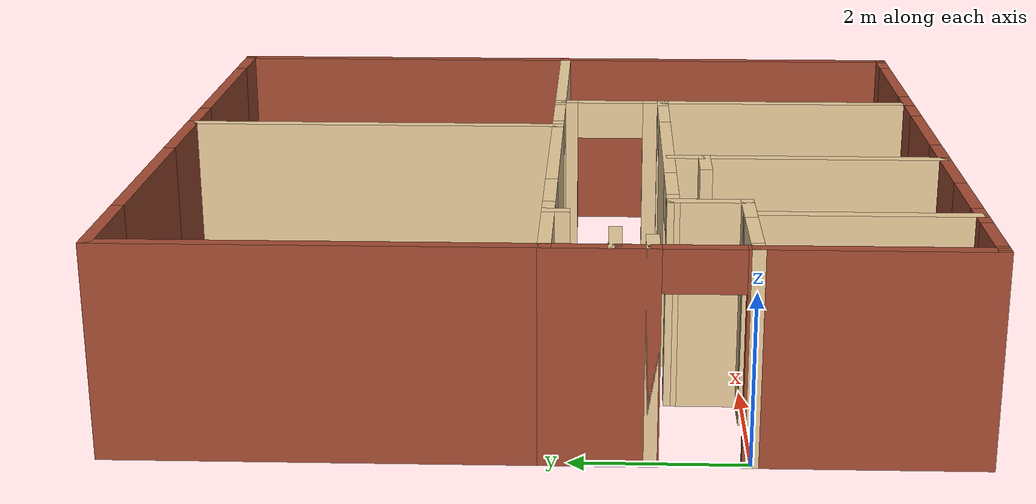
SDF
<?xml version='1.0'?>
<sdf version='1.6'>
  <model name='myhome'>
    <pose frame=''>4.5 2.27499 0 0 -0 0</pose>
    <link name='Wall_0'>
      <pose frame=''>-4.5 -1.14999 0 0 -0 1.5708</pose>
      <visual name='Wall_0_Visual_0'>
        <pose frame=''>-1.10813 0 1.25 0 -0 0</pose>
        <geometry>
          <box>
            <size>0.183738 0.15 2.5</size>
          </box>
        </geometry>
        <material>
          <script>
            <uri>file://media/materials/scripts/gazebo.material</uri>
            <name>Gazebo/Bricks</name>
          </script>
          <ambient>1 1 1 1</ambient>
        </material>
        <meta>
          <layer>0</layer>
        </meta>
      </visual>
      <collision name='Wall_0_Collision_0'>
        <geometry>
          <box>
            <size>0.183738 0.15 2.5</size>
          </box>
        </geometry>
        <pose frame=''>-1.10813 0 1.25 0 -0 0</pose>
      </collision>
      <visual name='Wall_0_Visual_1'>
        <pose frame=''>0.541869 0 1.25 0 -0 0</pose>
        <geometry>
          <box>
            <size>1.31626 0.15 2.5</size>
          </box>
        </geometry>
        <material>
          <script>
            <uri>file://media/materials/scripts/gazebo.material</uri>
            <name>Gazebo/Bricks</name>
          </script>
          <ambient>1 1 1 1</ambient>
        </material>
        <meta>
          <layer>0</layer>
        </meta>
      </visual>
      <collision name='Wall_0_Collision_1'>
        <geometry>
          <box>
            <size>1.31626 0.15 2.5</size>
          </box>
        </geometry>
        <pose frame=''>0.541869 0 1.25 0 -0 0</pose>
      </collision>
      <visual name='Wall_0_Visual_2'>
        <pose frame=''>-0.566262 0 2.25 0 -0 0</pose>
        <geometry>
          <box>
            <size>0.9 0.15 0.5</size>
          </box>
        </geometry>
        <material>
          <script>
            <uri>file://media/materials/scripts/gazebo.material</uri>
            <name>Gazebo/Bricks</name>
          </script>
          <ambient>1 1 1 1</ambient>
        </material>
        <meta>
          <layer>0</layer>
        </meta>
      </visual>
      <collision name='Wall_0_Collision_2'>
        <geometry>
          <box>
            <size>0.9 0.15 0.5</size>
          </box>
        </geometry>
        <pose frame=''>-0.566262 0 2.25 0 -0 0</pose>
      </collision>
    </link>
    <link name='Wall_11'>
      <collision name='Wall_11_Collision'>
        <geometry>
          <box>
            <size>0.32 0.15 2.5</size>
          </box>
        </geometry>
        <pose frame=''>0 0 1.25 0 -0 0</pose>
      </collision>
      <visual name='Wall_11_Visual'>
        <pose frame=''>0 0 1.25 0 -0 0</pose>
        <geometry>
          <box>
            <size>0.32 0.15 2.5</size>
          </box>
        </geometry>
        <material>
          <script>
            <uri>file://media/materials/scripts/gazebo.material</uri>
            <name>Gazebo/Grey</name>
          </script>
          <ambient>0.921569 0.807843 0.615686 1</ambient>
        </material>
        <meta>
          <layer>0</layer>
        </meta>
      </visual>
      <pose frame=''>-3.25 -0.109994 0 0 0 -1.5708</pose>
    </link>
    <link name='Wall_13'>
      <collision name='Wall_13_Collision'>
        <geometry>
          <box>
            <size>5 0.15 2.5</size>
          </box>
        </geometry>
        <pose frame=''>0 0 1.25 0 -0 0</pose>
      </collision>
      <visual name='Wall_13_Visual'>
        <pose frame=''>0 0 1.25 0 -0 0</pose>
        <geometry>
          <box>
            <size>5 0.15 2.5</size>
          </box>
        </geometry>
        <material>
          <script>
            <uri>file://media/materials/scripts/gazebo.material</uri>
            <name>Gazebo/Bricks</name>
          </script>
          <ambient>0.996078 0.47451 0.0196078 1</ambient>
        </material>
        <meta>
          <layer>0</layer>
        </meta>
      </visual>
      <pose frame=''>-4.5 2.40001 0 0 -0 1.5708</pose>
    </link>
    <link name='Wall_15'>
      <pose frame=''>-2 4.82501 0 0 -0 0</pose>
      <visual name='Wall_15_Visual_0'>
        <pose frame=''>-1.89995 0 1.25 0 -0 0</pose>
        <geometry>
          <box>
            <size>1.35011 0.15 2.5</size>
          </box>
        </geometry>
        <material>
          <script>
            <uri>file://media/materials/scripts/gazebo.material</uri>
            <name>Gazebo/Bricks</name>
          </script>
          <ambient>0.996078 0.47451 0.0196078 1</ambient>
        </material>
        <meta>
          <layer>0</layer>
        </meta>
      </visual>
      <collision name='Wall_15_Collision_0'>
        <geometry>
          <box>
            <size>1.35011 0.15 2.5</size>
          </box>
        </geometry>
        <pose frame=''>-1.89995 0 1.25 0 -0 0</pose>
      </collision>
      <visual name='Wall_15_Visual_1'>
        <pose frame=''>0.675053 0 0.25 0 -0 0</pose>
        <geometry>
          <box>
            <size>3.79989 0.15 0.5</size>
          </box>
        </geometry>
        <material>
          <script>
            <uri>file://media/materials/scripts/gazebo.material</uri>
            <name>Gazebo/Bricks</name>
          </script>
          <ambient>0.996078 0.47451 0.0196078 1</ambient>
        </material>
        <meta>
          <layer>0</layer>
        </meta>
      </visual>
      <collision name='Wall_15_Collision_1'>
        <geometry>
          <box>
            <size>3.79989 0.15 0.5</size>
          </box>
        </geometry>
        <pose frame=''>0.675053 0 0.25 0 -0 0</pose>
      </collision>
      <visual name='Wall_15_Visual_2'>
        <pose frame=''>1.90005 0 1.5 0 -0 0</pose>
        <geometry>
          <box>
            <size>1.34989 0.15 2</size>
          </box>
        </geometry>
        <material>
          <script>
            <uri>file://media/materials/scripts/gazebo.material</uri>
            <name>Gazebo/Bricks</name>
          </script>
          <ambient>0.996078 0.47451 0.0196078 1</ambient>
        </material>
        <meta>
          <layer>0</layer>
        </meta>
      </visual>
      <collision name='Wall_15_Collision_2'>
        <geometry>
          <box>
            <size>1.34989 0.15 2</size>
          </box>
        </geometry>
        <pose frame=''>1.90005 0 1.5 0 -0 0</pose>
      </collision>
      <visual name='Wall_15_Visual_3'>
        <pose frame=''>0.000106 0 1.9 0 -0 0</pose>
        <geometry>
          <box>
            <size>2.45 0.15 1.2</size>
          </box>
        </geometry>
        <material>
          <script>
            <uri>file://media/materials/scripts/gazebo.material</uri>
            <name>Gazebo/Bricks</name>
          </script>
          <ambient>0.996078 0.47451 0.0196078 1</ambient>
        </material>
        <meta>
          <layer>0</layer>
        </meta>
      </visual>
      <collision name='Wall_15_Collision_3'>
        <geometry>
          <box>
            <size>2.45 0.15 1.2</size>
          </box>
        </geometry>
        <pose frame=''>0.000106 0 1.9 0 -0 0</pose>
      </collision>
    </link>
    <link name='Wall_17'>
      <collision name='Wall_17_Collision'>
        <geometry>
          <box>
            <size>5 0.15 2.5</size>
          </box>
        </geometry>
        <pose frame=''>0 0 1.25 0 -0 0</pose>
      </collision>
      <visual name='Wall_17_Visual'>
        <pose frame=''>0 0 1.25 0 -0 0</pose>
        <geometry>
          <box>
            <size>5 0.15 2.5</size>
          </box>
        </geometry>
        <material>
          <script>
            <uri>file://media/materials/scripts/gazebo.material</uri>
            <name>Gazebo/Grey</name>
          </script>
          <ambient>0.921569 0.807843 0.615686 1</ambient>
        </material>
        <meta>
          <layer>0</layer>
        </meta>
      </visual>
      <pose frame=''>0.5 2.40001 0 0 0 -1.5708</pose>
    </link>
    <link name='Wall_19'>
      <pose frame=''>-1.375 -0.024994 0 0 -0 3.14159</pose>
      <visual name='Wall_19_Visual_0'>
        <pose frame=''>-0.652573 0 1.25 0 -0 0</pose>
        <geometry>
          <box>
            <size>2.59485 0.15 2.5</size>
          </box>
        </geometry>
        <material>
          <script>
            <uri>file://media/materials/scripts/gazebo.material</uri>
            <name>Gazebo/Grey</name>
          </script>
          <ambient>0.921569 0.807843 0.615686 1</ambient>
        </material>
        <meta>
          <layer>0</layer>
        </meta>
      </visual>
      <collision name='Wall_19_Collision_0'>
        <geometry>
          <box>
            <size>2.59485 0.15 2.5</size>
          </box>
        </geometry>
        <pose frame=''>-0.652573 0 1.25 0 -0 0</pose>
      </collision>
      <visual name='Wall_19_Visual_1'>
        <pose frame=''>1.74743 0 1.25 0 -0 0</pose>
        <geometry>
          <box>
            <size>0.405147 0.15 2.5</size>
          </box>
        </geometry>
        <material>
          <script>
            <uri>file://media/materials/scripts/gazebo.material</uri>
            <name>Gazebo/Grey</name>
          </script>
          <ambient>0.921569 0.807843 0.615686 1</ambient>
        </material>
        <meta>
          <layer>0</layer>
        </meta>
      </visual>
      <collision name='Wall_19_Collision_1'>
        <geometry>
          <box>
            <size>0.405147 0.15 2.5</size>
          </box>
        </geometry>
        <pose frame=''>1.74743 0 1.25 0 -0 0</pose>
      </collision>
      <visual name='Wall_19_Visual_2'>
        <pose frame=''>1.09485 0 2.25 0 -0 0</pose>
        <geometry>
          <box>
            <size>0.9 0.15 0.5</size>
          </box>
        </geometry>
        <material>
          <script>
            <uri>file://media/materials/scripts/gazebo.material</uri>
            <name>Gazebo/Grey</name>
          </script>
          <ambient>0.921569 0.807843 0.615686 1</ambient>
        </material>
        <meta>
          <layer>0</layer>
        </meta>
      </visual>
      <collision name='Wall_19_Collision_2'>
        <geometry>
          <box>
            <size>0.9 0.15 0.5</size>
          </box>
        </geometry>
        <pose frame=''>1.09485 0 2.25 0 -0 0</pose>
      </collision>
    </link>
    <link name='Wall_2'>
      <collision name='Wall_2_Collision'>
        <geometry>
          <box>
            <size>0.49 0.15 2.5</size>
          </box>
        </geometry>
        <pose frame=''>0 0 1.25 0 -0 0</pose>
      </collision>
      <visual name='Wall_2_Visual'>
        <pose frame=''>0 0 1.25 0 -0 0</pose>
        <geometry>
          <box>
            <size>0.49 0.15 2.5</size>
          </box>
        </geometry>
        <material>
          <script>
            <uri>file://media/materials/scripts/gazebo.material</uri>
            <name>Gazebo/Grey</name>
          </script>
          <ambient>0.921569 0.807843 0.615686 1</ambient>
        </material>
        <meta>
          <layer>0</layer>
        </meta>
      </visual>
      <pose frame=''>-4.33 -1.17499 0 0 -0 0</pose>
    </link>
    <link name='Wall_21'>
      <pose frame=''>-3.675 -2.27499 0 0 -0 0</pose>
      <visual name='Wall_21_Visual_0'>
        <pose frame=''>-0.785796 0 1.25 0 -0 0</pose>
        <geometry>
          <box>
            <size>0.228408 0.15 2.5</size>
          </box>
        </geometry>
        <material>
          <script>
            <uri>file://media/materials/scripts/gazebo.material</uri>
            <name>Gazebo/Grey</name>
          </script>
          <ambient>0.921569 0.807843 0.615686 1</ambient>
        </material>
        <meta>
          <layer>0</layer>
        </meta>
      </visual>
      <collision name='Wall_21_Collision_0'>
        <geometry>
          <box>
            <size>0.228408 0.15 2.5</size>
          </box>
        </geometry>
        <pose frame=''>-0.785796 0 1.25 0 -0 0</pose>
      </collision>
      <visual name='Wall_21_Visual_1'>
        <pose frame=''>0.564204 0 1.25 0 -0 0</pose>
        <geometry>
          <box>
            <size>0.671592 0.15 2.5</size>
          </box>
        </geometry>
        <material>
          <script>
            <uri>file://media/materials/scripts/gazebo.material</uri>
            <name>Gazebo/Grey</name>
          </script>
          <ambient>0.921569 0.807843 0.615686 1</ambient>
        </material>
        <meta>
          <layer>0</layer>
        </meta>
      </visual>
      <collision name='Wall_21_Collision_1'>
        <geometry>
          <box>
            <size>0.671592 0.15 2.5</size>
          </box>
        </geometry>
        <pose frame=''>0.564204 0 1.25 0 -0 0</pose>
      </collision>
      <visual name='Wall_21_Visual_2'>
        <pose frame=''>-0.221592 0 2.25 0 -0 0</pose>
        <geometry>
          <box>
            <size>0.9 0.15 0.5</size>
          </box>
        </geometry>
        <material>
          <script>
            <uri>file://media/materials/scripts/gazebo.material</uri>
            <name>Gazebo/Grey</name>
          </script>
          <ambient>0.921569 0.807843 0.615686 1</ambient>
        </material>
        <meta>
          <layer>0</layer>
        </meta>
      </visual>
      <collision name='Wall_21_Collision_2'>
        <geometry>
          <box>
            <size>0.9 0.15 0.5</size>
          </box>
        </geometry>
        <pose frame=''>-0.221592 0 2.25 0 -0 0</pose>
      </collision>
    </link>
    <link name='Wall_23'>
      <collision name='Wall_23_Collision'>
        <geometry>
          <box>
            <size>0.99 0.15 2.5</size>
          </box>
        </geometry>
        <pose frame=''>0 0 1.25 0 -0 0</pose>
      </collision>
      <visual name='Wall_23_Visual'>
        <pose frame=''>0 0 1.25 0 -0 0</pose>
        <geometry>
          <box>
            <size>0.99 0.15 2.5</size>
          </box>
        </geometry>
        <material>
          <script>
            <uri>file://media/materials/scripts/gazebo.material</uri>
            <name>Gazebo/Grey</name>
          </script>
          <ambient>0.921569 0.807843 0.615686 1</ambient>
        </material>
        <meta>
          <layer>0</layer>
        </meta>
      </visual>
      <pose frame=''>-2.85 -1.85499 0 0 -0 1.5708</pose>
    </link>
    <link name='Wall_31'>
      <pose frame=''>-0.525 -1.43549 0 0 0 -0.000215</pose>
      <visual name='Wall_31_Visual_0'>
        <pose frame=''>-2.23745 0 1.25 0 -0 0</pose>
        <geometry>
          <box>
            <size>0.3251 0.15 2.5</size>
          </box>
        </geometry>
        <material>
          <script>
            <uri>file://media/materials/scripts/gazebo.material</uri>
            <name>Gazebo/Grey</name>
          </script>
          <ambient>0.921569 0.807843 0.615686 1</ambient>
        </material>
        <meta>
          <layer>0</layer>
        </meta>
      </visual>
      <collision name='Wall_31_Collision_0'>
        <geometry>
          <box>
            <size>0.3251 0.15 2.5</size>
          </box>
        </geometry>
        <pose frame=''>-2.23745 0 1.25 0 -0 0</pose>
      </collision>
      <visual name='Wall_31_Visual_1'>
        <pose frame=''>0.030061 0 1.25 0 -0 0</pose>
        <geometry>
          <box>
            <size>2.40992 0.15 2.5</size>
          </box>
        </geometry>
        <material>
          <script>
            <uri>file://media/materials/scripts/gazebo.material</uri>
            <name>Gazebo/Grey</name>
          </script>
          <ambient>0.921569 0.807843 0.615686 1</ambient>
        </material>
        <meta>
          <layer>0</layer>
        </meta>
      </visual>
      <collision name='Wall_31_Collision_1'>
        <geometry>
          <box>
            <size>2.40992 0.15 2.5</size>
          </box>
        </geometry>
        <pose frame=''>0.030061 0 1.25 0 -0 0</pose>
      </collision>
      <visual name='Wall_31_Visual_2'>
        <pose frame=''>2.26751 0 1.25 0 -0 0</pose>
        <geometry>
          <box>
            <size>0.264977 0.15 2.5</size>
          </box>
        </geometry>
        <material>
          <script>
            <uri>file://media/materials/scripts/gazebo.material</uri>
            <name>Gazebo/Grey</name>
          </script>
          <ambient>0.921569 0.807843 0.615686 1</ambient>
        </material>
        <meta>
          <layer>0</layer>
        </meta>
      </visual>
      <collision name='Wall_31_Collision_2'>
        <geometry>
          <box>
            <size>0.264977 0.15 2.5</size>
          </box>
        </geometry>
        <pose frame=''>2.26751 0 1.25 0 -0 0</pose>
      </collision>
      <visual name='Wall_31_Visual_3'>
        <pose frame=''>-1.6249 0 2.25 0 -0 0</pose>
        <geometry>
          <box>
            <size>0.9 0.15 0.5</size>
          </box>
        </geometry>
        <material>
          <script>
            <uri>file://media/materials/scripts/gazebo.material</uri>
            <name>Gazebo/Grey</name>
          </script>
          <ambient>0.921569 0.807843 0.615686 1</ambient>
        </material>
        <meta>
          <layer>0</layer>
        </meta>
      </visual>
      <collision name='Wall_31_Collision_3'>
        <geometry>
          <box>
            <size>0.9 0.15 0.5</size>
          </box>
        </geometry>
        <pose frame=''>-1.6249 0 2.25 0 -0 0</pose>
      </collision>
      <visual name='Wall_31_Visual_4'>
        <pose frame=''>1.68502 0 2.25 0 -0 0</pose>
        <geometry>
          <box>
            <size>0.9 0.15 0.5</size>
          </box>
        </geometry>
        <material>
          <script>
            <uri>file://media/materials/scripts/gazebo.material</uri>
            <name>Gazebo/Grey</name>
          </script>
          <ambient>0.921569 0.807843 0.615686 1</ambient>
        </material>
        <meta>
          <layer>0</layer>
        </meta>
      </visual>
      <collision name='Wall_31_Collision_4'>
        <geometry>
          <box>
            <size>0.9 0.15 0.5</size>
          </box>
        </geometry>
        <pose frame=''>1.68502 0 2.25 0 -0 0</pose>
      </collision>
    </link>
    <link name='Wall_33'>
      <pose frame=''>1.8 -0.730494 0 0 -0 1.5708</pose>
      <visual name='Wall_33_Visual_0'>
        <pose frame=''>-0.606742 0 1.25 0 -0 0</pose>
        <geometry>
          <box>
            <size>0.348515 0.15 2.5</size>
          </box>
        </geometry>
        <material>
          <script>
            <uri>file://media/materials/scripts/gazebo.material</uri>
            <name>Gazebo/Grey</name>
          </script>
          <ambient>0.921569 0.807843 0.615686 1</ambient>
        </material>
        <meta>
          <layer>0</layer>
        </meta>
      </visual>
      <collision name='Wall_33_Collision_0'>
        <geometry>
          <box>
            <size>0.348515 0.15 2.5</size>
          </box>
        </geometry>
        <pose frame=''>-0.606742 0 1.25 0 -0 0</pose>
      </collision>
      <visual name='Wall_33_Visual_1'>
        <pose frame=''>0.624258 0 1.25 0 -0 0</pose>
        <geometry>
          <box>
            <size>0.313484 0.15 2.5</size>
          </box>
        </geometry>
        <material>
          <script>
            <uri>file://media/materials/scripts/gazebo.material</uri>
            <name>Gazebo/Grey</name>
          </script>
          <ambient>0.921569 0.807843 0.615686 1</ambient>
        </material>
        <meta>
          <layer>0</layer>
        </meta>
      </visual>
      <collision name='Wall_33_Collision_1'>
        <geometry>
          <box>
            <size>0.313484 0.15 2.5</size>
          </box>
        </geometry>
        <pose frame=''>0.624258 0 1.25 0 -0 0</pose>
      </collision>
      <visual name='Wall_33_Visual_2'>
        <pose frame=''>0.017516 0 2.25 0 -0 0</pose>
        <geometry>
          <box>
            <size>0.9 0.15 0.5</size>
          </box>
        </geometry>
        <material>
          <script>
            <uri>file://media/materials/scripts/gazebo.material</uri>
            <name>Gazebo/Grey</name>
          </script>
          <ambient>0.921569 0.807843 0.615686 1</ambient>
        </material>
        <meta>
          <layer>0</layer>
        </meta>
      </visual>
      <collision name='Wall_33_Collision_2'>
        <geometry>
          <box>
            <size>0.9 0.15 0.5</size>
          </box>
        </geometry>
        <pose frame=''>0.017516 0 2.25 0 -0 0</pose>
      </collision>
    </link>
    <link name='Wall_35'>
      <pose frame=''>1.15 -0.024994 0 0 -0 0</pose>
      <visual name='Wall_35_Visual_0'>
        <pose frame=''>-0.575785 0 1.25 0 -0 0</pose>
        <geometry>
          <box>
            <size>0.298431 0.15 2.5</size>
          </box>
        </geometry>
        <material>
          <script>
            <uri>file://media/materials/scripts/gazebo.material</uri>
            <name>Gazebo/Grey</name>
          </script>
          <ambient>0.921569 0.807843 0.615686 1</ambient>
        </material>
        <meta>
          <layer>0</layer>
        </meta>
      </visual>
      <collision name='Wall_35_Collision_0'>
        <geometry>
          <box>
            <size>0.298431 0.15 2.5</size>
          </box>
        </geometry>
        <pose frame=''>-0.575785 0 1.25 0 -0 0</pose>
      </collision>
      <visual name='Wall_35_Visual_1'>
        <pose frame=''>0.599215 0 1.25 0 -0 0</pose>
        <geometry>
          <box>
            <size>0.251569 0.15 2.5</size>
          </box>
        </geometry>
        <material>
          <script>
            <uri>file://media/materials/scripts/gazebo.material</uri>
            <name>Gazebo/Grey</name>
          </script>
          <ambient>0.921569 0.807843 0.615686 1</ambient>
        </material>
        <meta>
          <layer>0</layer>
        </meta>
      </visual>
      <collision name='Wall_35_Collision_1'>
        <geometry>
          <box>
            <size>0.251569 0.15 2.5</size>
          </box>
        </geometry>
        <pose frame=''>0.599215 0 1.25 0 -0 0</pose>
      </collision>
      <visual name='Wall_35_Visual_2'>
        <pose frame=''>0.023431 0 2.25 0 -0 0</pose>
        <geometry>
          <box>
            <size>0.9 0.15 0.5</size>
          </box>
        </geometry>
        <material>
          <script>
            <uri>file://media/materials/scripts/gazebo.material</uri>
            <name>Gazebo/Grey</name>
          </script>
          <ambient>0.921569 0.807843 0.615686 1</ambient>
        </material>
        <meta>
          <layer>0</layer>
        </meta>
      </visual>
      <collision name='Wall_35_Collision_2'>
        <geometry>
          <box>
            <size>0.9 0.15 0.5</size>
          </box>
        </geometry>
        <pose frame=''>0.023431 0 2.25 0 -0 0</pose>
      </collision>
    </link>
    <link name='Wall_37'>
      <collision name='Wall_37_Collision'>
        <geometry>
          <box>
            <size>2.7 0.15 2.5</size>
          </box>
        </geometry>
        <pose frame=''>0 0 1.25 0 -0 0</pose>
      </collision>
      <visual name='Wall_37_Visual'>
        <pose frame=''>0 0 1.25 0 -0 0</pose>
        <geometry>
          <box>
            <size>2.7 0.15 2.5</size>
          </box>
        </geometry>
        <material>
          <script>
            <uri>file://media/materials/scripts/gazebo.material</uri>
            <name>Gazebo/Bricks</name>
          </script>
          <ambient>1 1 1 1</ambient>
        </material>
        <meta>
          <layer>0</layer>
        </meta>
      </visual>
      <pose frame=''>-4.5 -3.54999 0 0 0 -1.5708</pose>
    </link>
    <link name='Wall_39'>
      <pose frame=''>-3.9 -4.82499 0 0 -0 0</pose>
      <visual name='Wall_39_Visual_0'>
        <pose frame=''>-0.571745 0 1.25 0 -0 0</pose>
        <geometry>
          <box>
            <size>0.206511 0.15 2.5</size>
          </box>
        </geometry>
        <material>
          <script>
            <uri>file://media/materials/scripts/gazebo.material</uri>
            <name>Gazebo/Bricks</name>
          </script>
          <ambient>1 1 1 1</ambient>
        </material>
        <meta>
          <layer>0</layer>
        </meta>
      </visual>
      <collision name='Wall_39_Collision_0'>
        <geometry>
          <box>
            <size>0.206511 0.15 2.5</size>
          </box>
        </geometry>
        <pose frame=''>-0.571745 0 1.25 0 -0 0</pose>
      </collision>
      <visual name='Wall_39_Visual_1'>
        <pose frame=''>0.103255 0 0.25 0 -0 0</pose>
        <geometry>
          <box>
            <size>1.14349 0.15 0.5</size>
          </box>
        </geometry>
        <material>
          <script>
            <uri>file://media/materials/scripts/gazebo.material</uri>
            <name>Gazebo/Bricks</name>
          </script>
          <ambient>1 1 1 1</ambient>
        </material>
        <meta>
          <layer>0</layer>
        </meta>
      </visual>
      <collision name='Wall_39_Collision_1'>
        <geometry>
          <box>
            <size>1.14349 0.15 0.5</size>
          </box>
        </geometry>
        <pose frame=''>0.103255 0 0.25 0 -0 0</pose>
      </collision>
      <visual name='Wall_39_Visual_2'>
        <pose frame=''>0.503255 0 1.5 0 -0 0</pose>
        <geometry>
          <box>
            <size>0.343489 0.15 2</size>
          </box>
        </geometry>
        <material>
          <script>
            <uri>file://media/materials/scripts/gazebo.material</uri>
            <name>Gazebo/Bricks</name>
          </script>
          <ambient>1 1 1 1</ambient>
        </material>
        <meta>
          <layer>0</layer>
        </meta>
      </visual>
      <collision name='Wall_39_Collision_2'>
        <geometry>
          <box>
            <size>0.343489 0.15 2</size>
          </box>
        </geometry>
        <pose frame=''>0.503255 0 1.5 0 -0 0</pose>
      </collision>
      <visual name='Wall_39_Visual_3'>
        <pose frame=''>-0.068489 0 1.9 0 -0 0</pose>
        <geometry>
          <box>
            <size>0.8 0.15 1.2</size>
          </box>
        </geometry>
        <material>
          <script>
            <uri>file://media/materials/scripts/gazebo.material</uri>
            <name>Gazebo/Bricks</name>
          </script>
          <ambient>1 1 1 1</ambient>
        </material>
        <meta>
          <layer>0</layer>
        </meta>
      </visual>
      <collision name='Wall_39_Collision_3'>
        <geometry>
          <box>
            <size>0.8 0.15 1.2</size>
          </box>
        </geometry>
        <pose frame=''>-0.068489 0 1.9 0 -0 0</pose>
      </collision>
    </link>
    <link name='Wall_41'>
      <collision name='Wall_41_Collision'>
        <geometry>
          <box>
            <size>2.7 0.15 2.5</size>
          </box>
        </geometry>
        <pose frame=''>0 0 1.25 0 -0 0</pose>
      </collision>
      <visual name='Wall_41_Visual'>
        <pose frame=''>0 0 1.25 0 -0 0</pose>
        <geometry>
          <box>
            <size>2.7 0.15 2.5</size>
          </box>
        </geometry>
        <material>
          <script>
            <uri>file://media/materials/scripts/gazebo.material</uri>
            <name>Gazebo/Grey</name>
          </script>
          <ambient>0.921569 0.807843 0.615686 1</ambient>
        </material>
        <meta>
          <layer>0</layer>
        </meta>
      </visual>
      <pose frame=''>-3.3 -3.54999 0 0 -0 1.5708</pose>
    </link>
    <link name='Wall_43'>
      <pose frame=''>-2.15 -4.82499 0 0 -0 0</pose>
      <visual name='Wall_43_Visual_0'>
        <pose frame=''>-1.05276 0 1.25 0 -0 0</pose>
        <geometry>
          <box>
            <size>0.344481 0.15 2.5</size>
          </box>
        </geometry>
        <material>
          <script>
            <uri>file://media/materials/scripts/gazebo.material</uri>
            <name>Gazebo/Bricks</name>
          </script>
          <ambient>1 1 1 1</ambient>
        </material>
        <meta>
          <layer>0</layer>
        </meta>
      </visual>
      <collision name='Wall_43_Collision_0'>
        <geometry>
          <box>
            <size>0.344481 0.15 2.5</size>
          </box>
        </geometry>
        <pose frame=''>-1.05276 0 1.25 0 -0 0</pose>
      </collision>
      <visual name='Wall_43_Visual_1'>
        <pose frame=''>0.17224 0 0.25 0 -0 0</pose>
        <geometry>
          <box>
            <size>2.10552 0.15 0.5</size>
          </box>
        </geometry>
        <material>
          <script>
            <uri>file://media/materials/scripts/gazebo.material</uri>
            <name>Gazebo/Bricks</name>
          </script>
          <ambient>1 1 1 1</ambient>
        </material>
        <meta>
          <layer>0</layer>
        </meta>
      </visual>
      <collision name='Wall_43_Collision_1'>
        <geometry>
          <box>
            <size>2.10552 0.15 0.5</size>
          </box>
        </geometry>
        <pose frame=''>0.17224 0 0.25 0 -0 0</pose>
      </collision>
      <visual name='Wall_43_Visual_2'>
        <pose frame=''>0.67224 0 1.5 0 -0 0</pose>
        <geometry>
          <box>
            <size>1.10552 0.15 2</size>
          </box>
        </geometry>
        <material>
          <script>
            <uri>file://media/materials/scripts/gazebo.material</uri>
            <name>Gazebo/Bricks</name>
          </script>
          <ambient>1 1 1 1</ambient>
        </material>
        <meta>
          <layer>0</layer>
        </meta>
      </visual>
      <collision name='Wall_43_Collision_2'>
        <geometry>
          <box>
            <size>1.10552 0.15 2</size>
          </box>
        </geometry>
        <pose frame=''>0.67224 0 1.5 0 -0 0</pose>
      </collision>
      <visual name='Wall_43_Visual_3'>
        <pose frame=''>-0.380519 0 1.9 0 -0 0</pose>
        <geometry>
          <box>
            <size>1 0.15 1.2</size>
          </box>
        </geometry>
        <material>
          <script>
            <uri>file://media/materials/scripts/gazebo.material</uri>
            <name>Gazebo/Bricks</name>
          </script>
          <ambient>1 1 1 1</ambient>
        </material>
        <meta>
          <layer>0</layer>
        </meta>
      </visual>
      <collision name='Wall_43_Collision_3'>
        <geometry>
          <box>
            <size>1 0.15 1.2</size>
          </box>
        </geometry>
        <pose frame=''>-0.380519 0 1.9 0 -0 0</pose>
      </collision>
    </link>
    <link name='Wall_45'>
      <collision name='Wall_45_Collision'>
        <geometry>
          <box>
            <size>3.527 0.15 2.5</size>
          </box>
        </geometry>
        <pose frame=''>0 0 1.25 0 -0 0</pose>
      </collision>
      <visual name='Wall_45_Visual'>
        <pose frame=''>0 0 1.25 0 -0 0</pose>
        <geometry>
          <box>
            <size>3.527 0.15 2.5</size>
          </box>
        </geometry>
        <material>
          <script>
            <uri>file://media/materials/scripts/gazebo.material</uri>
            <name>Gazebo/Grey</name>
          </script>
          <ambient>0.921569 0.807843 0.615686 1</ambient>
        </material>
        <meta>
          <layer>0</layer>
        </meta>
      </visual>
      <pose frame=''>-1 -3.13649 0 0 -0 1.5708</pose>
    </link>
    <link name='Wall_47'>
      <collision name='Wall_47_Collision'>
        <geometry>
          <box>
            <size>3.53902 0.15 2.5</size>
          </box>
        </geometry>
        <pose frame=''>0 0 1.25 0 -0 0</pose>
      </collision>
      <visual name='Wall_47_Visual'>
        <pose frame=''>0 0 1.25 0 -0 0</pose>
        <geometry>
          <box>
            <size>3.53902 0.15 2.5</size>
          </box>
        </geometry>
        <material>
          <script>
            <uri>file://media/materials/scripts/gazebo.material</uri>
            <name>Gazebo/Grey</name>
          </script>
          <ambient>0.921569 0.807843 0.615686 1</ambient>
        </material>
        <meta>
          <layer>0</layer>
        </meta>
      </visual>
      <pose frame=''>1.8 -3.13049 0 0 0 -1.5708</pose>
    </link>
    <link name='Wall_48'>
      <pose frame=''>0.4 -4.82499 0 0 -0 3.14159</pose>
      <visual name='Wall_48_Visual_0'>
        <pose frame=''>-1.11423 0 1.25 0 -0 0</pose>
        <geometry>
          <box>
            <size>0.721544 0.15 2.5</size>
          </box>
        </geometry>
        <material>
          <script>
            <uri>file://media/materials/scripts/gazebo.material</uri>
            <name>Gazebo/Bricks</name>
          </script>
          <ambient>1 1 1 1</ambient>
        </material>
        <meta>
          <layer>0</layer>
        </meta>
      </visual>
      <collision name='Wall_48_Collision_0'>
        <geometry>
          <box>
            <size>0.721544 0.15 2.5</size>
          </box>
        </geometry>
        <pose frame=''>-1.11423 0 1.25 0 -0 0</pose>
      </collision>
      <visual name='Wall_48_Visual_1'>
        <pose frame=''>0.360772 0 0.25 0 -0 0</pose>
        <geometry>
          <box>
            <size>2.22846 0.15 0.5</size>
          </box>
        </geometry>
        <material>
          <script>
            <uri>file://media/materials/scripts/gazebo.material</uri>
            <name>Gazebo/Bricks</name>
          </script>
          <ambient>1 1 1 1</ambient>
        </material>
        <meta>
          <layer>0</layer>
        </meta>
      </visual>
      <collision name='Wall_48_Collision_1'>
        <geometry>
          <box>
            <size>2.22846 0.15 0.5</size>
          </box>
        </geometry>
        <pose frame=''>0.360772 0 0.25 0 -0 0</pose>
      </collision>
      <visual name='Wall_48_Visual_2'>
        <pose frame=''>1.11077 0 1.5 0 -0 0</pose>
        <geometry>
          <box>
            <size>0.728456 0.15 2</size>
          </box>
        </geometry>
        <material>
          <script>
            <uri>file://media/materials/scripts/gazebo.material</uri>
            <name>Gazebo/Bricks</name>
          </script>
          <ambient>1 1 1 1</ambient>
        </material>
        <meta>
          <layer>0</layer>
        </meta>
      </visual>
      <collision name='Wall_48_Collision_2'>
        <geometry>
          <box>
            <size>0.728456 0.15 2</size>
          </box>
        </geometry>
        <pose frame=''>1.11077 0 1.5 0 -0 0</pose>
      </collision>
      <visual name='Wall_48_Visual_3'>
        <pose frame=''>-0.003456 0 1.9 0 -0 0</pose>
        <geometry>
          <box>
            <size>1.5 0.15 1.2</size>
          </box>
        </geometry>
        <material>
          <script>
            <uri>file://media/materials/scripts/gazebo.material</uri>
            <name>Gazebo/Bricks</name>
          </script>
          <ambient>1 1 1 1</ambient>
        </material>
        <meta>
          <layer>0</layer>
        </meta>
      </visual>
      <collision name='Wall_48_Collision_3'>
        <geometry>
          <box>
            <size>1.5 0.15 1.2</size>
          </box>
        </geometry>
        <pose frame=''>-0.003456 0 1.9 0 -0 0</pose>
      </collision>
    </link>
    <link name='Wall_52'>
      <pose frame=''>3.15 -4.82499 0 0 -0 0</pose>
      <visual name='Wall_52_Visual_0'>
        <pose frame=''>-1.16201 0 1.25 0 -0 0</pose>
        <geometry>
          <box>
            <size>0.525985 0.15 2.5</size>
          </box>
        </geometry>
        <material>
          <script>
            <uri>file://media/materials/scripts/gazebo.material</uri>
            <name>Gazebo/Bricks</name>
          </script>
          <ambient>1 1 1 1</ambient>
        </material>
        <meta>
          <layer>0</layer>
        </meta>
      </visual>
      <collision name='Wall_52_Collision_0'>
        <geometry>
          <box>
            <size>0.525985 0.15 2.5</size>
          </box>
        </geometry>
        <pose frame=''>-1.16201 0 1.25 0 -0 0</pose>
      </collision>
      <visual name='Wall_52_Visual_1'>
        <pose frame=''>0.262992 0 0.25 0 -0 0</pose>
        <geometry>
          <box>
            <size>2.32402 0.15 0.5</size>
          </box>
        </geometry>
        <material>
          <script>
            <uri>file://media/materials/scripts/gazebo.material</uri>
            <name>Gazebo/Bricks</name>
          </script>
          <ambient>1 1 1 1</ambient>
        </material>
        <meta>
          <layer>0</layer>
        </meta>
      </visual>
      <collision name='Wall_52_Collision_1'>
        <geometry>
          <box>
            <size>2.32402 0.15 0.5</size>
          </box>
        </geometry>
        <pose frame=''>0.262992 0 0.25 0 -0 0</pose>
      </collision>
      <visual name='Wall_52_Visual_2'>
        <pose frame=''>1.16299 0 1.5 0 -0 0</pose>
        <geometry>
          <box>
            <size>0.524015 0.15 2</size>
          </box>
        </geometry>
        <material>
          <script>
            <uri>file://media/materials/scripts/gazebo.material</uri>
            <name>Gazebo/Bricks</name>
          </script>
          <ambient>1 1 1 1</ambient>
        </material>
        <meta>
          <layer>0</layer>
        </meta>
      </visual>
      <collision name='Wall_52_Collision_2'>
        <geometry>
          <box>
            <size>0.524015 0.15 2</size>
          </box>
        </geometry>
        <pose frame=''>1.16299 0 1.5 0 -0 0</pose>
      </collision>
      <visual name='Wall_52_Visual_3'>
        <pose frame=''>0.000985 0 1.9 0 -0 0</pose>
        <geometry>
          <box>
            <size>1.8 0.15 1.2</size>
          </box>
        </geometry>
        <material>
          <script>
            <uri>file://media/materials/scripts/gazebo.material</uri>
            <name>Gazebo/Bricks</name>
          </script>
          <ambient>1 1 1 1</ambient>
        </material>
        <meta>
          <layer>0</layer>
        </meta>
      </visual>
      <collision name='Wall_52_Collision_3'>
        <geometry>
          <box>
            <size>1.8 0.15 1.2</size>
          </box>
        </geometry>
        <pose frame=''>0.000985 0 1.9 0 -0 0</pose>
      </collision>
    </link>
    <link name='Wall_55'>
      <collision name='Wall_55_Collision'>
        <geometry>
          <box>
            <size>2.85 0.15 2.5</size>
          </box>
        </geometry>
        <pose frame=''>0 0 1.25 0 -0 0</pose>
      </collision>
      <visual name='Wall_55_Visual'>
        <pose frame=''>0 0 1.25 0 -0 0</pose>
        <geometry>
          <box>
            <size>2.85 0.15 2.5</size>
          </box>
        </geometry>
        <material>
          <script>
            <uri>file://media/materials/scripts/gazebo.material</uri>
            <name>Gazebo/Grey</name>
          </script>
          <ambient>0.921569 0.807843 0.615686 1</ambient>
        </material>
        <meta>
          <layer>0</layer>
        </meta>
      </visual>
      <pose frame=''>3.15 -0.024994 0 0 -0 0</pose>
    </link>
    <link name='Wall_57'>
      <pose frame=''>2.5 4.82501 0 0 -0 0</pose>
      <visual name='Wall_57_Visual_0'>
        <pose frame=''>-1.65081 0 1.25 0 -0 0</pose>
        <geometry>
          <box>
            <size>0.848373 0.15 2.5</size>
          </box>
        </geometry>
        <material>
          <script>
            <uri>file://media/materials/scripts/gazebo.material</uri>
            <name>Gazebo/Bricks</name>
          </script>
          <ambient>1 1 1 1</ambient>
        </material>
        <meta>
          <layer>0</layer>
        </meta>
      </visual>
      <collision name='Wall_57_Collision_0'>
        <geometry>
          <box>
            <size>0.848373 0.15 2.5</size>
          </box>
        </geometry>
        <pose frame=''>-1.65081 0 1.25 0 -0 0</pose>
      </collision>
      <visual name='Wall_57_Visual_1'>
        <pose frame=''>0.424187 0 0.25 0 -0 0</pose>
        <geometry>
          <box>
            <size>3.30163 0.15 0.5</size>
          </box>
        </geometry>
        <material>
          <script>
            <uri>file://media/materials/scripts/gazebo.material</uri>
            <name>Gazebo/Bricks</name>
          </script>
          <ambient>1 1 1 1</ambient>
        </material>
        <meta>
          <layer>0</layer>
        </meta>
      </visual>
      <collision name='Wall_57_Collision_1'>
        <geometry>
          <box>
            <size>3.30163 0.15 0.5</size>
          </box>
        </geometry>
        <pose frame=''>0.424187 0 0.25 0 -0 0</pose>
      </collision>
      <visual name='Wall_57_Visual_2'>
        <pose frame=''>1.64919 0 1.5 0 -0 0</pose>
        <geometry>
          <box>
            <size>0.851627 0.15 2</size>
          </box>
        </geometry>
        <material>
          <script>
            <uri>file://media/materials/scripts/gazebo.material</uri>
            <name>Gazebo/Bricks</name>
          </script>
          <ambient>1 1 1 1</ambient>
        </material>
        <meta>
          <layer>0</layer>
        </meta>
      </visual>
      <collision name='Wall_57_Collision_2'>
        <geometry>
          <box>
            <size>0.851627 0.15 2</size>
          </box>
        </geometry>
        <pose frame=''>1.64919 0 1.5 0 -0 0</pose>
      </collision>
      <visual name='Wall_57_Visual_3'>
        <pose frame=''>-0.001627 0 1.9 0 -0 0</pose>
        <geometry>
          <box>
            <size>2.45 0.15 1.2</size>
          </box>
        </geometry>
        <material>
          <script>
            <uri>file://media/materials/scripts/gazebo.material</uri>
            <name>Gazebo/Bricks</name>
          </script>
          <ambient>1 1 1 1</ambient>
        </material>
        <meta>
          <layer>0</layer>
        </meta>
      </visual>
      <collision name='Wall_57_Collision_3'>
        <geometry>
          <box>
            <size>2.45 0.15 1.2</size>
          </box>
        </geometry>
        <pose frame=''>-0.001627 0 1.9 0 -0 0</pose>
      </collision>
    </link>
    <link name='Wall_58'>
      <collision name='Wall_58_Collision'>
        <geometry>
          <box>
            <size>5 0.15 2.5</size>
          </box>
        </geometry>
        <pose frame=''>0 0 1.25 0 -0 0</pose>
      </collision>
      <visual name='Wall_58_Visual'>
        <pose frame=''>0 0 1.25 0 -0 0</pose>
        <geometry>
          <box>
            <size>5 0.15 2.5</size>
          </box>
        </geometry>
        <material>
          <script>
            <uri>file://media/materials/scripts/gazebo.material</uri>
            <name>Gazebo/Bricks</name>
          </script>
          <ambient>1 1 1 1</ambient>
        </material>
        <meta>
          <layer>0</layer>
        </meta>
      </visual>
      <pose frame=''>4.5 2.40001 0 0 0 -1.5708</pose>
    </link>
    <link name='Wall_6'>
      <collision name='Wall_6_Collision'>
        <geometry>
          <box>
            <size>0.75 0.15 2.5</size>
          </box>
        </geometry>
        <pose frame=''>0 0 1.25 0 -0 0</pose>
      </collision>
      <visual name='Wall_6_Visual'>
        <pose frame=''>0 0 1.25 0 -0 0</pose>
        <geometry>
          <box>
            <size>0.75 0.15 2.5</size>
          </box>
        </geometry>
        <material>
          <script>
            <uri>file://media/materials/scripts/gazebo.material</uri>
            <name>Gazebo/Grey</name>
          </script>
          <ambient>0.921569 0.807843 0.615686 1</ambient>
        </material>
        <meta>
          <layer>0</layer>
        </meta>
      </visual>
      <pose frame=''>-4.2 -0.774994 0 0 -0 0</pose>
    </link>
    <link name='Wall_60'>
      <collision name='Wall_60_Collision'>
        <geometry>
          <box>
            <size>4.95 0.15 2.5</size>
          </box>
        </geometry>
        <pose frame=''>0 0 1.25 0 -0 0</pose>
      </collision>
      <visual name='Wall_60_Visual'>
        <pose frame=''>0 0 1.25 0 -0 0</pose>
        <geometry>
          <box>
            <size>4.95 0.15 2.5</size>
          </box>
        </geometry>
        <material>
          <script>
            <uri>file://media/materials/scripts/gazebo.material</uri>
            <name>Gazebo/Bricks</name>
          </script>
          <ambient>1 1 1 1</ambient>
        </material>
        <meta>
          <layer>0</layer>
        </meta>
      </visual>
      <pose frame=''>4.5 -2.42499 0 0 0 -1.5708</pose>
    </link>
    <link name='Wall_62'>
      <collision name='Wall_62_Collision'>
        <geometry>
          <box>
            <size>0.65 0.15 2.5</size>
          </box>
        </geometry>
        <pose frame=''>0 0 1.25 0 -0 0</pose>
      </collision>
      <visual name='Wall_62_Visual'>
        <pose frame=''>0 0 1.25 0 -0 0</pose>
        <geometry>
          <box>
            <size>0.65 0.15 2.5</size>
          </box>
        </geometry>
        <material>
          <script>
            <uri>file://media/materials/scripts/gazebo.material</uri>
            <name>Gazebo/Grey</name>
          </script>
          <ambient>0.921569 0.807843 0.615686 1</ambient>
        </material>
        <meta>
          <layer>0</layer>
        </meta>
      </visual>
      <pose frame=''>-1.25 -1.87499 0 0 -0 3.14159</pose>
    </link>
    <link name='Wall_9'>
      <collision name='Wall_9_Collision'>
        <geometry>
          <box>
            <size>1.4 0.15 2.5</size>
          </box>
        </geometry>
        <pose frame=''>0 0 1.25 0 -0 0</pose>
      </collision>
      <visual name='Wall_9_Visual'>
        <pose frame=''>0 0 1.25 0 -0 0</pose>
        <geometry>
          <box>
            <size>1.4 0.15 2.5</size>
          </box>
        </geometry>
        <material>
          <script>
            <uri>file://media/materials/scripts/gazebo.material</uri>
            <name>Gazebo/Grey</name>
          </script>
          <ambient>0.921569 0.807843 0.615686 1</ambient>
        </material>
        <meta>
          <layer>0</layer>
        </meta>
      </visual>
      <pose frame=''>-3.875 -0.024994 0 0 -0 0</pose>
    </link>
    <static>1</static>
  </model>
</sdf>
